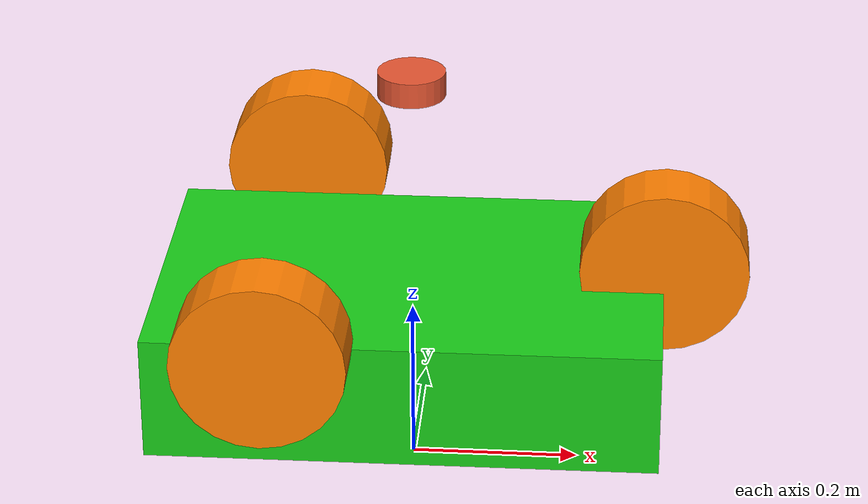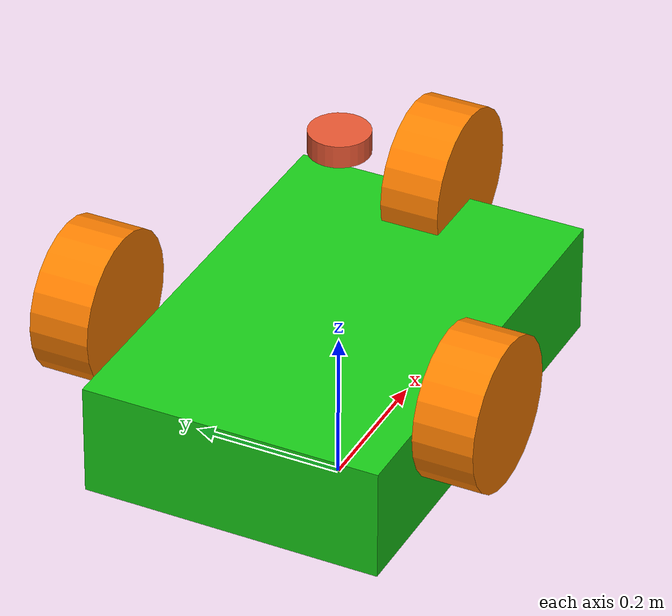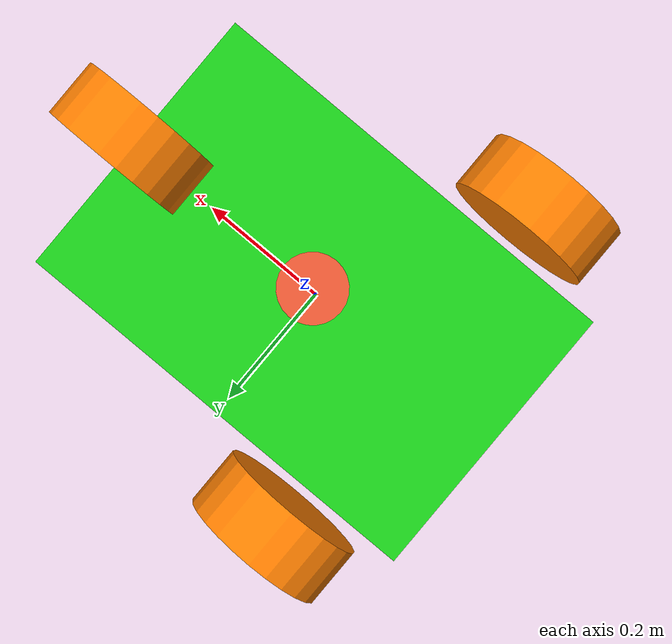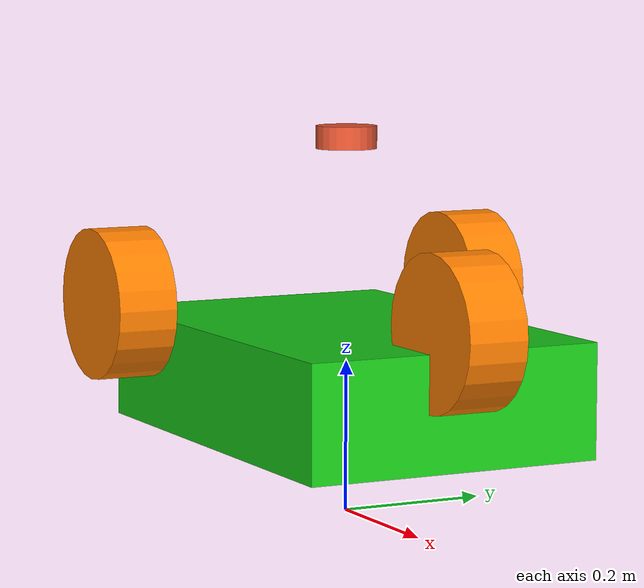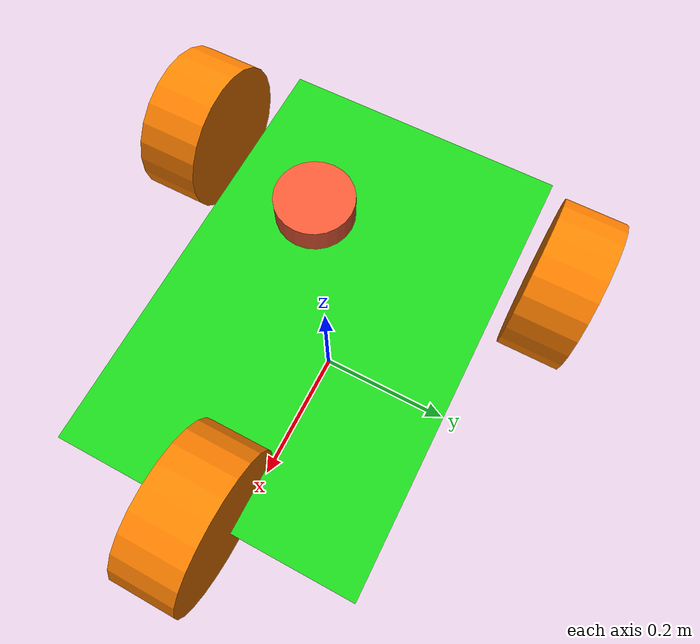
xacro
<?xml version="1.0"?>
<robot xmlns:xacro="http://www.ros.org/wiki/xacro" name="three_wheel_agv">

  <!-- ==================== Base Footprint ==================== -->
  <!-- 机器人在地面的投影点，用于导航和 TF 树 -->
  <link name="base_footprint">
  </link>

  <joint name="base_footprint_joint" type="fixed">
    <parent link="base_footprint"/>
    <child link="base_link"/>
    <!-- base_link 中心高度 0.175，所以 footprint 在 base_link 下方 0.175 -->
    <origin xyz="0 0 0.175" rpy="0 0 0"/>
  </joint>

  <!-- ==================== Base Link ==================== -->
  <link name="base_link">
    <inertial>
      <origin xyz="0 0 0" rpy="0 0 0"/>
      <!-- 质心在原点 -->
      <mass value="60.0"/>
      <inertia ixx="0.5" ixy="0.0" ixz="0.0" iyy="0.5" iyz="0.0" izz="0.8"/>
    </inertial>
    <visual>
      <origin xyz="0 0 0" rpy="0 0 0"/>
      <!-- 视觉在原点 -->
      <geometry>
        <box size="0.6 0.4 0.15"/>
      </geometry>
      <material name="green">
        <color rgba="0.1 0.8 0.1 1.0"/>
      </material>
    </visual>
    <collision>
      <origin xyz="0 0 0" rpy="0 0 0"/>
      <!-- 碰撞在原点 -->
      <geometry>
        <box size="0.6 0.4 0.15"/>
      </geometry>
    </collision>
  </link>

  <!-- ==================== IMU ==================== -->
  <link name="imu_link">
    <inertial>
      <origin xyz="0 0 0" rpy="0 0 0"/>
      <mass value="0.01"/>
      <inertia ixx="0.0001" ixy="0.0" ixz="0.0" iyy="0.0001" iyz="0.0" izz="0.0001"/>
    </inertial>
    <visual>
      <origin xyz="0 0 0" rpy="0 0 0"/>
      <geometry>
        <box size="0.04 0.04 0.02"/>
      </geometry>
      <material name="purple">
        <color rgba="0.8 0.0 0.8 1.0"/>
        <!-- 紫色 -->
      </material>
    </visual>
  </link>

  <joint name="imu_joint" type="fixed">
    <parent link="base_link"/>
    <child link="imu_link"/>
    <origin xyz="0 0 0" rpy="0 0 0"/>
  </joint>

  <!-- ==================== 3D Lidar (Mid360 style) ==================== -->
  <link name="lidar_link">
    <inertial>
      <origin xyz="0 0 0" rpy="0 0 0"/>
      <mass value="0.2"/>
      <inertia ixx="0.001" ixy="0.0" ixz="0.0" iyy="0.001" iyz="0.0" izz="0.001"/>
    </inertial>
    <visual>
      <origin xyz="0 0 0" rpy="0 0 0"/>
      <geometry>
        <cylinder radius="0.04" length="0.03"/>
      </geometry>
      <material name="cinnabar">
        <color rgba="0.906 0.337 0.196 1.0"/>
      </material>
    </visual>
  </link>

  <joint name="lidar_joint" type="fixed">
    <parent link="base_link"/>
    <child link="lidar_link"/>
    <origin xyz="0 0 0.32" rpy="0 0 0"/>
  </joint>

  <!-- ==================== Front Steering Module ==================== -->
  <link name="wheel_front_steering_link">
    <inertial>
      <origin xyz="0 0 0" rpy="0 0 0"/>
      <mass value="0.5"/>
      <inertia ixx="0.001" ixy="0.0" ixz="0.0" iyy="0.001" iyz="0.0" izz="0.001"/>
    </inertial>
    <visual>
      <origin xyz="0 0 0" rpy="0 0 0"/>
      <geometry>
        <cylinder radius="0.03" length="0.06"/>
      </geometry>
      <material name="grey">
        <color rgba="0.5 0.5 0.5 1.0"/>
      </material>
    </visual>
  </link>

  <joint name="wheel_front_steering_joint" type="revolute">
    <parent link="base_link"/>
    <child link="wheel_front_steering_link"/>
    <origin xyz="0.3 0.0 0.1" rpy="0 0 0"/>
    <axis xyz="0 0 1"/>
    <!-- 360° 转向支持 -->
    <limit lower="-3.14159" upper="3.14159" effort="10.0" velocity="5.0"/>
  </joint>

  <link name="wheel_front_wheel_link">
    <inertial>
      <origin xyz="0 0 0" rpy="0 0 0"/>
      <mass value="1.0"/>
      <inertia ixx="0.015" ixy="0.0" ixz="0.0" iyy="0.015" iyz="0.0" izz="0.02"/>
    </inertial>
    <visual>
      <origin xyz="0 0 0" rpy="1.5708 0 0"/>
      <geometry>
        <cylinder radius="0.1" length="0.08"/>
      </geometry>
      <material name="orange_wheel">
        <color rgba="1.0 0.5 0.0 1.0"/>
        <!-- 橙色 -->
      </material>
    </visual>
    <collision>
      <origin xyz="0 0 0" rpy="1.5708 0 0"/>
      <geometry>
        <cylinder radius="0.1" length="0.08"/>
      </geometry>
    </collision>
  </link>

  <joint name="wheel_front_wheel_joint" type="revolute">
    <parent link="wheel_front_steering_link"/>
    <child link="wheel_front_wheel_link"/>
    <origin xyz="0.0 0.0 0.0" rpy="0 0 0"/>
    <axis xyz="0 1 0"/>
    <limit lower="-1e9" upper="1e9" effort="10.0" velocity="10.0"/>
  </joint>

  <!-- ==================== Left Steering Module ==================== -->
  <link name="wheel_left_steering_link">
    <inertial>
      <origin xyz="0 0 0" rpy="0 0 0"/>
      <mass value="0.5"/>
      <inertia ixx="0.001" ixy="0.0" ixz="0.0" iyy="0.001" iyz="0.0" izz="0.001"/>
    </inertial>
    <visual>
      <origin xyz="0 0 0" rpy="0 0 0"/>
      <geometry>
        <cylinder radius="0.03" length="0.06"/>
      </geometry>
      <material name="grey"/>
    </visual>
  </link>

  <joint name="wheel_left_steering_joint" type="revolute">
    <parent link="base_link"/>
    <child link="wheel_left_steering_link"/>
    <origin xyz="-0.15 0.26 0.1" rpy="0 0 0"/>
    <axis xyz="0 0 1"/>
    <limit lower="-3.14159" upper="3.14159" effort="10.0" velocity="5.0"/>
  </joint>

  <link name="wheel_left_wheel_link">
    <inertial>
      <origin xyz="0 0 0" rpy="0 0 0"/>
      <mass value="1.0"/>
      <inertia ixx="0.015" ixy="0.0" ixz="0.0" iyy="0.015" iyz="0.0" izz="0.02"/>
    </inertial>
    <visual>
      <origin xyz="0 0 0" rpy="1.5708 0 0"/>
      <geometry>
        <cylinder radius="0.1" length="0.08"/>
      </geometry>
      <material name="orange_wheel">
        <color rgba="1.0 0.5 0.0 1.0"/>
        <!-- 橙色 -->
      </material>
    </visual>
    <collision>
      <origin xyz="0 0 0" rpy="1.5708 0 0"/>
      <geometry>
        <cylinder radius="0.1" length="0.08"/>
      </geometry>
    </collision>
  </link>

  <joint name="wheel_left_wheel_joint" type="revolute">
    <parent link="wheel_left_steering_link"/>
    <child link="wheel_left_wheel_link"/>
    <origin xyz="0.0 0.0 0.0" rpy="0 0 0"/>
    <axis xyz="0 1 0"/>
    <limit lower="-1e9" upper="1e9" effort="10.0" velocity="10.0"/>
  </joint>

  <!-- ==================== Right Steering Module ==================== -->
  <link name="wheel_right_steering_link">
    <inertial>
      <origin xyz="0 0 0" rpy="0 0 0"/>
      <mass value="0.5"/>
      <inertia ixx="0.001" ixy="0.0" ixz="0.0" iyy="0.001" iyz="0.0" izz="0.001"/>
    </inertial>
    <visual>
      <origin xyz="0 0 0" rpy="0 0 0"/>
      <geometry>
        <cylinder radius="0.03" length="0.06"/>
      </geometry>
      <material name="grey"/>
    </visual>
  </link>

  <joint name="wheel_right_steering_joint" type="revolute">
    <parent link="base_link"/>
    <child link="wheel_right_steering_link"/>
    <origin xyz="-0.15 -0.26 0.1" rpy="0 0 0"/>
    <axis xyz="0 0 1"/>
    <limit lower="-3.14159" upper="3.14159" effort="10.0" velocity="5.0"/>
  </joint>

  <link name="wheel_right_wheel_link">
    <inertial>
      <origin xyz="0 0 0" rpy="0 0 0"/>
      <mass value="1.0"/>
      <inertia ixx="0.015" ixy="0.0" ixz="0.0" iyy="0.015" iyz="0.0" izz="0.02"/>
    </inertial>
    <visual>
      <origin xyz="0 0 0" rpy="1.5708 0 0"/>
      <geometry>
        <cylinder radius="0.1" length="0.08"/>
      </geometry>
      <material name="orange_wheel">
        <color rgba="1.0 0.5 0.0 1.0"/>
        <!-- 橙色 -->
      </material>
    </visual>
    <collision>
      <origin xyz="0 0 0" rpy="1.5708 0 0"/>
      <geometry>
        <cylinder radius="0.1" length="0.08"/>
      </geometry>
    </collision>
  </link>

  <joint name="wheel_right_wheel_joint" type="revolute">
    <parent link="wheel_right_steering_link"/>
    <child link="wheel_right_wheel_link"/>
    <origin xyz="0.0 0.0 0.0" rpy="0 0 0"/>
    <axis xyz="0 1 0"/>
    <limit lower="-1e9" upper="1e9" effort="10.0" velocity="10.0"/>
  </joint>

  <!-- ==================== ros2_control ==================== -->
  <ros2_control name="GzSystem" type="system">
    <hardware>
      <plugin>gz_ros2_control/GzSystem</plugin>
    </hardware>
    <joint name="wheel_front_steering_joint">
      <command_interface name="position"/>
      <state_interface name="position"/>
      <state_interface name="velocity"/>
    </joint>
    <joint name="wheel_left_steering_joint">
      <command_interface name="position"/>
      <state_interface name="position"/>
      <state_interface name="velocity"/>
    </joint>
    <joint name="wheel_right_steering_joint">
      <command_interface name="position"/>
      <state_interface name="position"/>
      <state_interface name="velocity"/>
    </joint>
    <joint name="wheel_front_wheel_joint">
      <command_interface name="velocity"/>
      <state_interface name="position"/>
      <state_interface name="velocity"/>
    </joint>
    <joint name="wheel_left_wheel_joint">
      <command_interface name="velocity"/>
      <state_interface name="position"/>
      <state_interface name="velocity"/>
    </joint>
    <joint name="wheel_right_wheel_joint">
      <command_interface name="velocity"/>
      <state_interface name="position"/>
      <state_interface name="velocity"/>
    </joint>
  </ros2_control>

  <!-- ==================== Gazebo Plugins ==================== -->
  <gazebo>
    <plugin filename="gz_ros2_control-system" name="gz_ros2_control::GzROS2ControlPlugin">
      <parameters>$(find simulated_chassis)/param/three_wheel_controllers.yaml</parameters>
      <robot_param>robot_description</robot_param>
      <robot_param_node>robot_state_publisher</robot_param_node>
    </plugin>
    <plugin filename="gz-sim-sensors-system" name="gz::sim::systems::Sensors">
    </plugin>
    <plugin name="gz::sim::systems::Imu" filename="gz-sim-imu-system"></plugin>
  </gazebo>

  <!-- ==================== IMU Sensor (Edifice Compatible) ==================== -->
  <gazebo reference="imu_link">
    <sensor name="imu_sensor" type="imu">
      <always_on>true</always_on>
      <enable>true</enable>
      <update_rate>100</update_rate>
      <visualize>false</visualize>
      <topic>/imu</topic>
      <gz_frame_id>imu_link</gz_frame_id>
      <imu>
        <angular_velocity>
          <x>
            <noise type="gaussian">
              <mean>0</mean>
              <stddev>0.01</stddev>
            </noise>
          </x>
          <y>
            <noise type="gaussian">
              <mean>0</mean>
              <stddev>0.01</stddev>
            </noise>
          </y>
          <z>
            <noise type="gaussian">
              <mean>0</mean>
              <stddev>0.01</stddev>
            </noise>
          </z>
        </angular_velocity>
        <linear_acceleration>
          <x>
            <noise type="gaussian">
              <mean>0</mean>
              <stddev>0.1</stddev>
            </noise>
          </x>
          <y>
            <noise type="gaussian">
              <mean>0</mean>
              <stddev>0.1</stddev>
            </noise>
          </y>
          <z>
            <noise type="gaussian">
              <mean>0</mean>
              <stddev>0.1</stddev>
            </noise>
          </z>
        </linear_acceleration>
      </imu>
    </sensor>
  </gazebo>

  <gazebo reference="lidar_link">
    <sensor name="mid360_sensor" type="gpu_lidar">
      <enable>true</enable>
      <always_on>true</always_on>
      <update_rate>10</update_rate>
      <visualize>true</visualize>
      <topic>/lidar/point_cloud</topic>
      <gz_frame_id>lidar_link</gz_frame_id>

      <lidar>
        <scan>
          <horizontal>
            <samples>360</samples>
            <resolution>1</resolution>
            <min_angle>-3.1415926</min_angle>
            <max_angle>3.1415926</max_angle>
          </horizontal>
          <vertical>
            <samples>16</samples>
            <min_angle>-0.2618</min_angle>
            <max_angle>0.2618</max_angle>
          </vertical>
        </scan>
        <range>
          <min>0.2</min>
          <max>30.0</max>
          <resolution>0.01</resolution>
        </range>
      </lidar>

      <noise>
        <type>gaussian</type>
        <mean>0.0</mean>
        <stddev>0.02</stddev>
      </noise>
    </sensor>
  </gazebo>

</robot>
